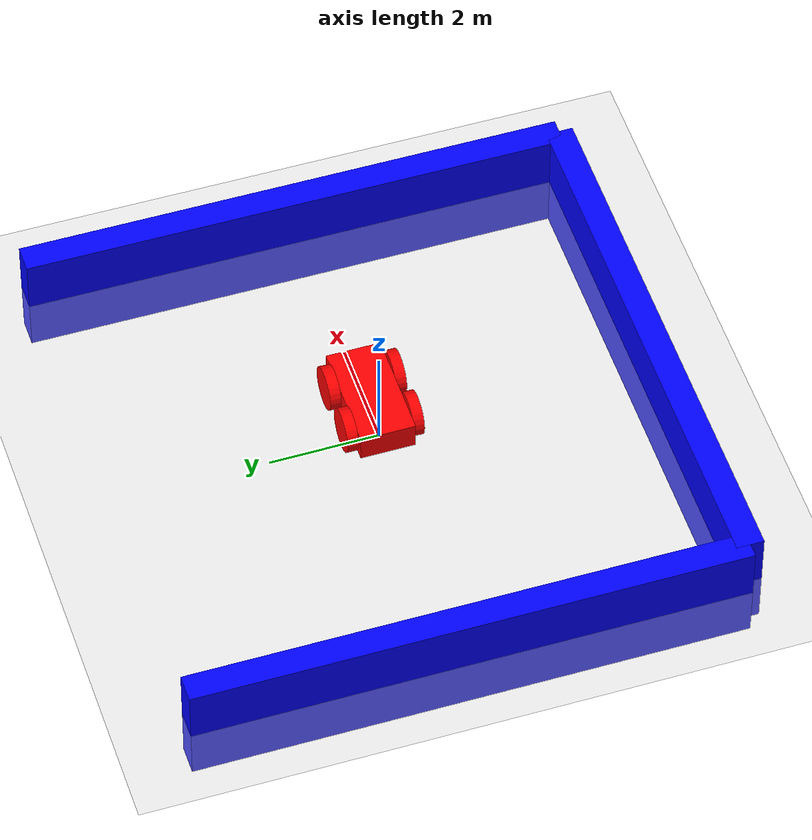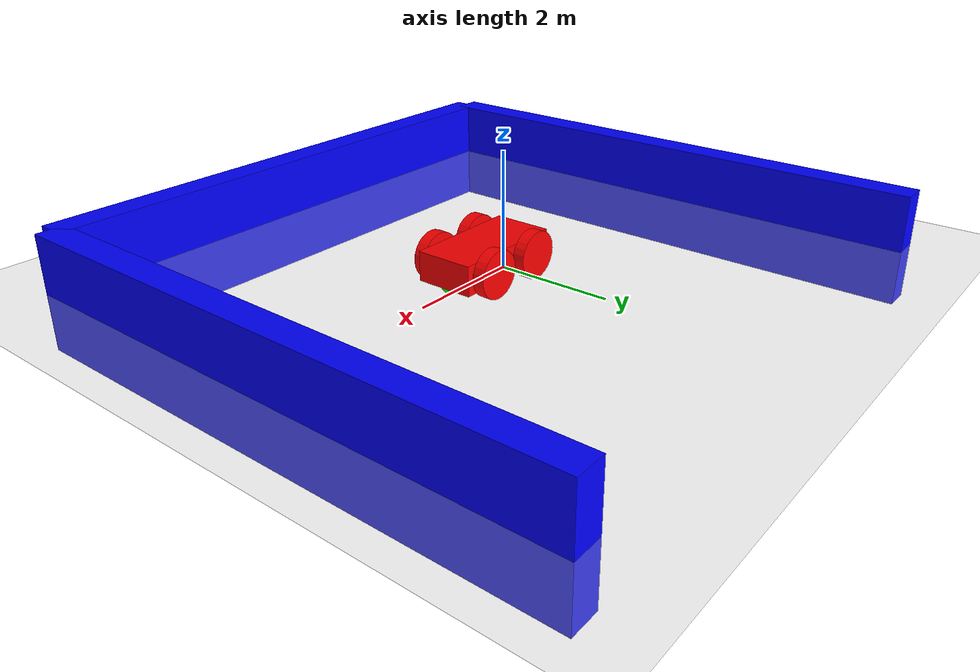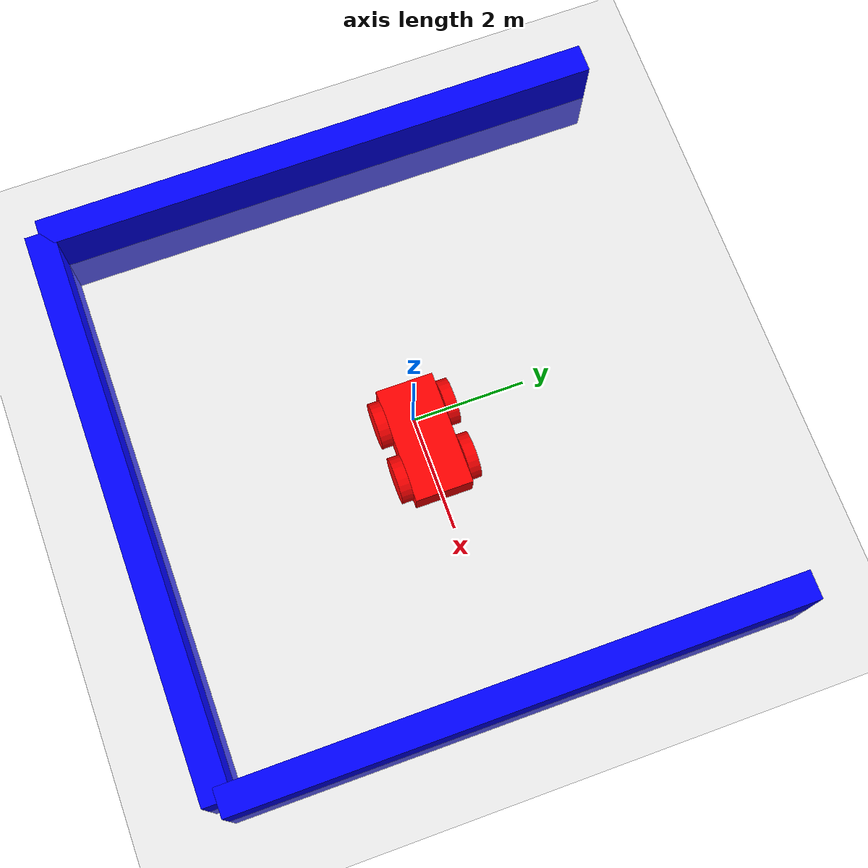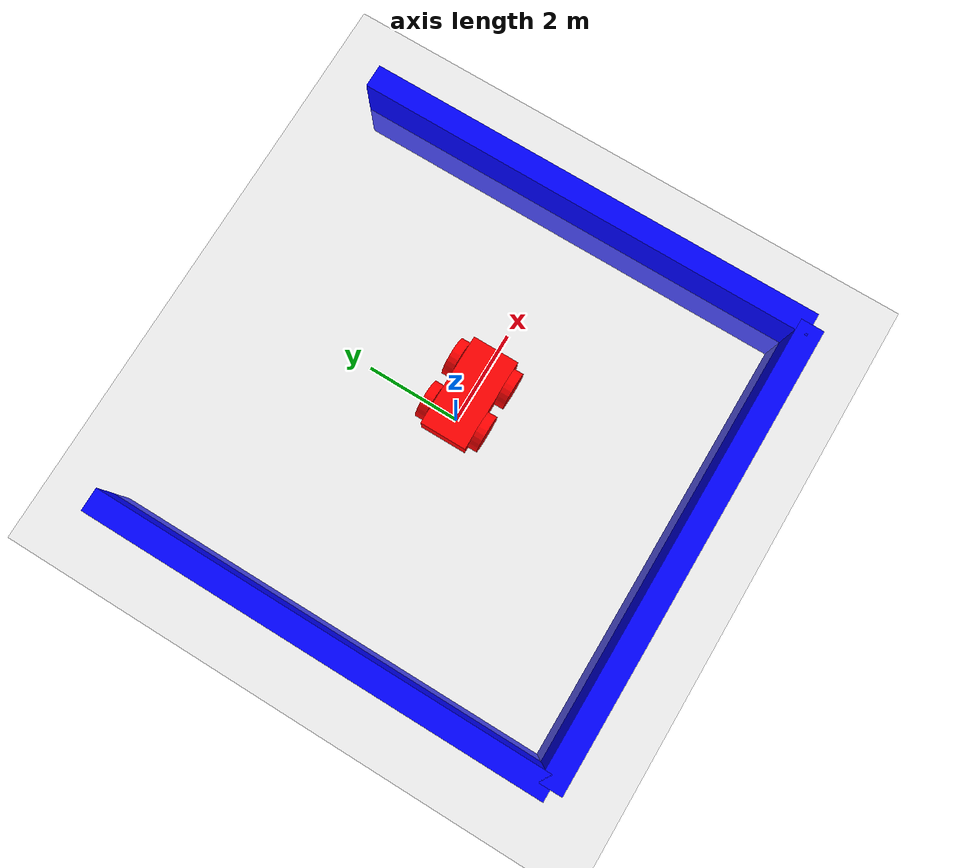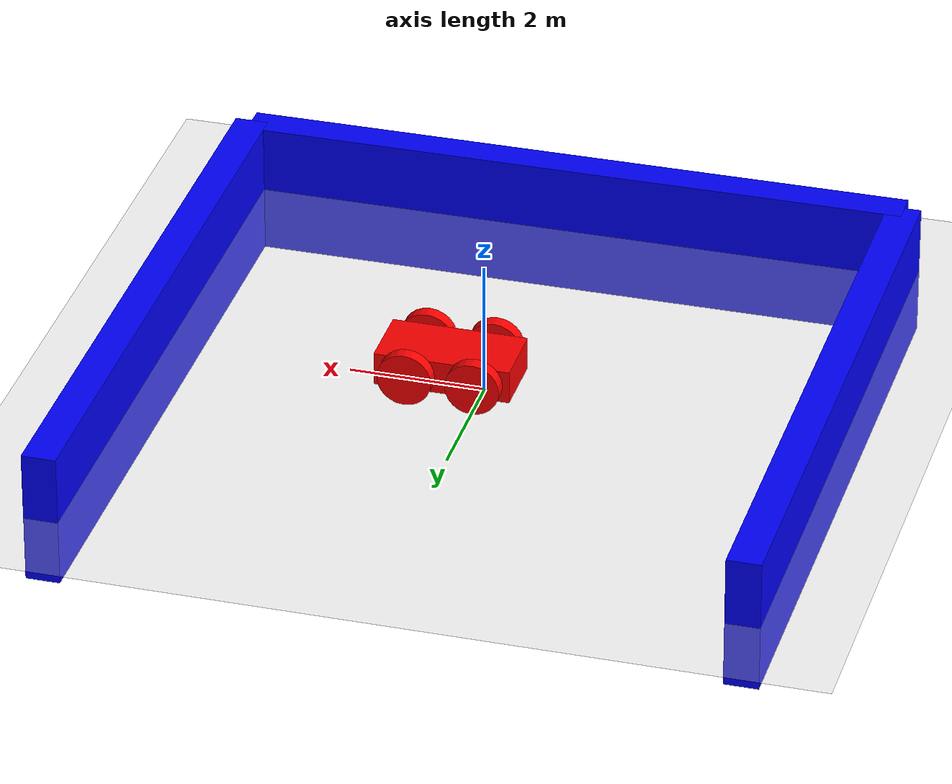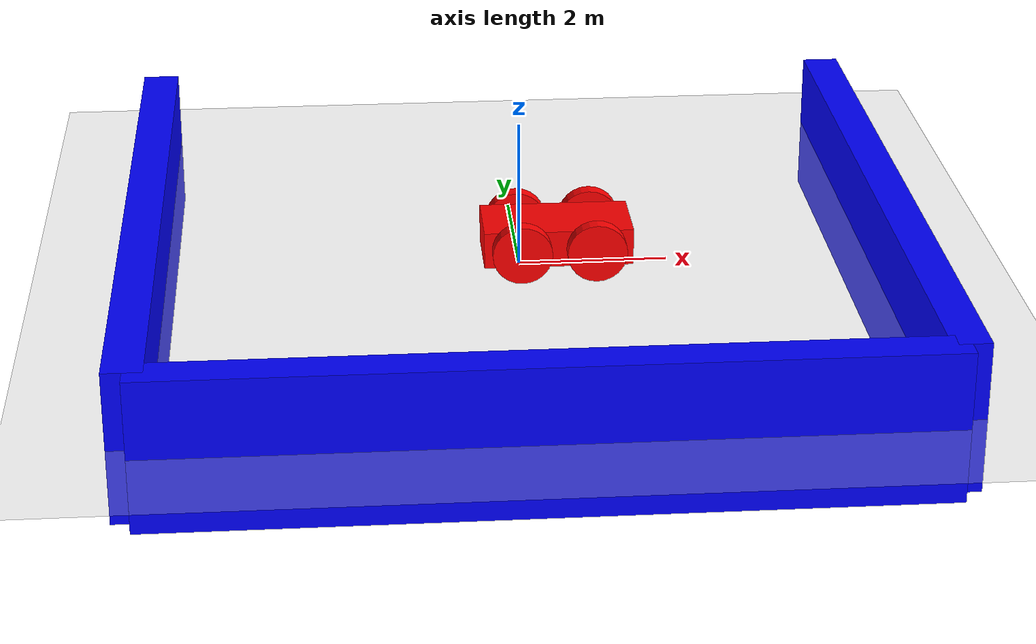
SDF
<?xml version="1.0" ?>
<sdf version="1.8">
    <world name="car_world">
        <physics name="1ms" type="ignored">
            <max_step_size>0.001</max_step_size>
            <real_time_factor>1.0</real_time_factor>
        </physics>
        <plugin
            filename="libignition-gazebo-physics-system.so"
            name="ignition::gazebo::systems::Physics">
        </plugin>
        <plugin filename="libignition-gazebo-imu-system.so"
        name="ignition::gazebo::systems::Imu">
</plugin>
        <plugin
            filename="libignition-gazebo-user-commands-system.so"
            name="ignition::gazebo::systems::UserCommands">
        </plugin>
        <plugin filename="libignition-gazebo-contact-system.so"
        name="ignition::gazebo::systems::Contact">
</plugin>
<plugin
      filename="libignition-gazebo-sensors-system.so"
      name="ignition::gazebo::systems::Sensors">
      <render_engine>ogre2</render_engine>
    </plugin>

        <plugin
            filename="libignition-gazebo-scene-broadcaster-system.so"
            name="ignition::gazebo::systems::SceneBroadcaster">
        </plugin>

        <light type="directional" name="sun">
            <cast_shadows>true</cast_shadows>
            <pose>0 0 10 0 0 0</pose>
            <diffuse>0.8 0.8 0.8 1</diffuse>
            <specular>0.2 0.2 0.2 1</specular>
            <attenuation>
                <range>1000</range>
                <constant>0.9</constant>
                <linear>0.01</linear>
                <quadratic>0.001</quadratic>
            </attenuation>
            <direction>-0.5 0.1 -0.9</direction>
        </light>

        <model name="ground_plane">
            <static>true</static>
            <link name="link">
                <collision name="collision">
                <geometry>
                    <plane>
                    <normal>0 0 1</normal>
                    </plane>
                </geometry>
                </collision>
                <visual name="visual">
                <geometry>
                    <plane>
                    <normal>0 0 1</normal>
                    <size>100 100</size>
                    </plane>
                </geometry>
                <material>
                    <ambient>0.8 0.8 0.8 1</ambient>
                    <diffuse>0.8 0.8 0.8 1</diffuse>
                    <specular>0.8 0.8 0.8 1</specular>
                </material>
                </visual>
            </link>
        </model>
 <model name='c_wall_left'>
            <static>true</static>
            <pose>-5 0 0 0 0 0</pose>
            <link name='box'>
                <visual name='visual'>
                    <geometry>
                        <box>
                            <size>0.5 10.0 2.0</size>
                        </box>
                    </geometry>
                    <material>
                        <ambient>0.0 0.0 1.0 1</ambient>
                        <diffuse>0.0 0.0 1.0 1</diffuse>
                        <specular>0.0 0.0 1.0 1</specular>
                    </material>
                </visual>
                <collision name='collision'>
                    <geometry>
                        <box>
                            <size>0.5 10.0 2.0</size>
                        </box>
                    </geometry>
                </collision>
            </link>
        </model>

        <model name='c_wall_right'>
            <static>true</static>
            <pose>5 0 0 0 0 0</pose>
            <link name='box'>
                <visual name='visual'>
                    <geometry>
                        <box>
                            <size>0.5 10.0 2.0</size>
                        </box>
                    </geometry>
                    <material>
                        <ambient>0.0 0.0 1.0 1</ambient>
                        <diffuse>0.0 0.0 1.0 1</diffuse>
                        <specular>0.0 0.0 1.0 1</specular>
                    </material>
                </visual>
                <collision name='collision'>
                    <geometry>
                        <box>
                            <size>0.5 10.0 2.0</size>
                        </box>
                    </geometry>
                </collision>
            </link>
        </model>

        <model name='c_wall_back'>
            <static>true</static>
            <pose>0 -5 0 0 0 0</pose>
            <link name='box'>
                <visual name='visual'>
                    <geometry>
                        <box>
                            <size>10.0 0.5 2.0</size>
                        </box>
                    </geometry>
                    <material>
                        <ambient>0.0 0.0 1.0 1</ambient>
                        <diffuse>0.0 0.0 1.0 1</diffuse>
                        <specular>0.0 0.0 1.0 1</specular>
                    </material>
                </visual>
                <collision name='collision'>
                    <geometry>
                        <box>
                            <size>10.0 0.5 2.0</size>
                        </box>
                    </geometry>
                </collision>
            </link>
        </model>
        <model name='vehicle_blue' canonical_link='chassis'>
           <pose relative_to='world'>0 0 0 0 0 0</pose>
           <frame name="lidar_frame" attached_to='chassis'>
    <pose>0.8 0 0.5 0 0 0</pose>
</frame>

           <link name='chassis'>
               <pose relative_to='__model__'>0.5 0 0.4 0 0 0</pose>

               <inertial> <!--inertial properties of the link mass, inertia matix-->
                   <mass>1.14395</mass>
                   <inertia>
                       <ixx>0.095329</ixx>
                       <ixy>0</ixy>
                       <ixz>0</ixz>
                       <iyy>0.381317</iyy>
                       <iyz>0</iyz>
                       <izz>0.476646</izz>
                  </inertia>
              </inertial>
                  <visual name='visual'>
                     <geometry>
                         <box>
                             <size>2.0 1.0 0.5</size>
                         </box>
                     </geometry>
        <!--let's add color to our link-->
                     <material>
                         <ambient>1.0 0.0 0.0 1</ambient>
                         <diffuse>1.0 0.0 0.0 1</diffuse>
                         <specular>1.0 0.0 0.0 1</specular>
                     </material>
                 </visual>
                 <collision name='collision'>
                     <geometry>
                          <box>
                              <size>2.0 1.0 0.5</size>
                          </box>
                      </geometry>
                  </collision>
                  <sensor name="imu_sensor" type="imu">
    <always_on>1</always_on>
    <update_rate>1</update_rate>
    <visualize>true</visualize>
    <topic>imu</topic>
</sensor>
<sensor name='gpu_lidar' type='gpu_lidar'>"
    <pose relative_to='lidar_frame'>0 0 0 0 0 0</pose>
    <topic>lidar</topic>
    <update_rate>10</update_rate>
    <ray>
        <scan>
            <horizontal>
                <samples>640</samples>
                <resolution>1</resolution>
                <min_angle>-1.396263</min_angle>
                <max_angle>1.396263</max_angle>
            </horizontal>
            <vertical>
                <samples>1</samples>
                <resolution>0.01</resolution>
                <min_angle>0</min_angle>
                <max_angle>0</max_angle>
            </vertical>
        </scan>
        <range>
            <min>0.08</min>
            <max>10.0</max>
            <resolution>0.01</resolution>
        </range>
    </ray>
    <always_on>1</always_on>
    <visualize>true</visualize>
</sensor>
              </link>
              <link name='left_front_wheel'>
                  <pose relative_to="chassis">0.5 0.6 0 -1.5707 0 0</pose>
                  <inertial>
                      <mass>1</mass>
                      <inertia>
                          <ixx>0.043333</ixx>
                          <ixy>0</ixy>
                          <ixz>0</ixz>
                          <iyy>0.043333</iyy>
                          <iyz>0</iyz>
                          <izz>0.08</izz>
                      </inertia>
                  </inertial>
                      <visual name='visual'>
        <geometry>
            <cylinder>
                <radius>0.4</radius>
                <length>0.2</length>
            </cylinder>
        </geometry>
        <material>
            <ambient>1.0 0.0 0.0 1</ambient>
            <diffuse>1.0 0.0 0.0 1</diffuse>
            <specular>1.0 0.0 0.0 1</specular>
        </material>
    </visual>
    <collision name='collision'>
        <geometry>
            <cylinder>
                <radius>0.4</radius>
                <length>0.2</length>
            </cylinder>
        </geometry>
    </collision>
</link>
<link name='right_front_wheel'>
    <pose relative_to="chassis">0.5 -0.6 0 -1.5707 0 0</pose> <!--angles are in radian-->
    <inertial>
        <mass>1</mass>
        <inertia>
            <ixx>0.043333</ixx>
            <ixy>0</ixy>
            <ixz>0</ixz>
            <iyy>0.043333</iyy>
            <iyz>0</iyz>
            <izz>0.08</izz>
        </inertia>
    </inertial>
    <visual name='visual'>
        <geometry>
            <cylinder>
                <radius>0.4</radius>
                <length>0.2</length>
            </cylinder>
        </geometry>
        <material>
            <ambient>1.0 0.0 0.0 1</ambient>
            <diffuse>1.0 0.0 0.0 1</diffuse>
            <specular>1.0 0.0 0.0 1</specular>
        </material>
    </visual>
    <collision name='collision'>
        <geometry>
            <cylinder>
                <radius>0.4</radius>
                <length>0.2</length>
            </cylinder>
        </geometry>
    </collision>
</link>
<link name='left_rear_wheel'>
    <pose relative_to="chassis">-0.5 0.6 0 -1.5707 0 0</pose>
    <inertial>
        <mass>1</mass>
        <inertia>
            <ixx>0.043333</ixx>
            <ixy>0</ixy>
            <ixz>0</ixz>
            <iyy>0.043333</iyy>
            <iyz>0</iyz>
            <izz>0.08</izz>
        </inertia>
    </inertial>
    <visual name='visual'>
        <geometry>
            <cylinder>
                <radius>0.4</radius>
                <length>0.2</length>
            </cylinder>
        </geometry>
        <material>
            <ambient>1.0 0.0 0.0 1</ambient>
            <diffuse>1.0 0.0 0.0 1</diffuse>
            <specular>1.0 0.0 0.0 1</specular>
        </material>
    </visual>
    <collision name='collision'>
        <geometry>
            <cylinder>
                <radius>0.4</radius>
                <length>0.2</length>
            </cylinder>
        </geometry>
    </collision>
</link>
<link name='right_rear_wheel'>
    <pose relative_to="chassis">-0.5 -0.6 0 -1.5707 0 0</pose> <!--angles are in radian-->
    <inertial>
        <mass>1</mass>
        <inertia>
            <ixx>0.043333</ixx>
            <ixy>0</ixy>
            <ixz>0</ixz>
            <iyy>0.043333</iyy>
            <iyz>0</iyz>
            <izz>0.08</izz>
        </inertia>
    </inertial>
    <visual name='visual'>
        <geometry>
            <cylinder>
                <radius>0.4</radius>
                <length>0.2</length>
            </cylinder>
        </geometry>
        <material>
            <ambient>1.0 0.0 0.0 1</ambient>
            <diffuse>1.0 0.0 0.0 1</diffuse>
            <specular>1.0 0.0 0.0 1</specular>
        </material>
    </visual>
    <collision name='collision'>
        <geometry>
            <cylinder>
                <radius>0.4</radius>
                <length>0.2</length>
            </cylinder>
        </geometry>
    </collision>
</link>
<frame name="caster_frame" attached_to='chassis'>
    <pose>0.8 0 -0.2 0 0 0</pose>
</frame>
<!--caster wheel-->
<link name='caster'>
    <pose relative_to='caster_frame'/>
    <inertial>
        <mass>1</mass>
        <inertia>
            <ixx>0.016</ixx>
            <ixy>0</ixy>
            <ixz>0</ixz>
            <iyy>0.016</iyy>
            <iyz>0</iyz>
            <izz>0.016</izz>
        </inertia>
    </inertial>
    <visual name='visual'>
        <geometry>
            <sphere>
                <radius>0.2</radius>
            </sphere>
        </geometry>
        <material>
            <ambient>0.0 1 0.0 1</ambient>
            <diffuse>0.0 1 0.0 1</diffuse>
            <specular>0.0 1 0.0 1</specular>
        </material>
    </visual>
    <collision name='collision'>
        <geometry>
            <sphere>
                <radius>0.2</radius>
            </sphere>
        </geometry>
    </collision>
</link>
<joint name='left_front_wheel_joint' type='revolute'>
    <pose relative_to='left_front_wheel'/>
        <parent>chassis</parent>
    <child>left_front_wheel</child>
        <axis>
        <xyz expressed_in='__model__'>0 1 0</xyz> <!--can be defined as any frame or even arbitrary frames-->
        <limit>
            <lower>-1.79769e+308</lower>    <!--negative infinity-->
            <upper>1.79769e+308</upper>     <!--positive infinity-->
        </limit>
    </axis>
</joint>
<joint name='right_front_wheel_joint' type='revolute'>
    <pose relative_to='right_front_wheel'/>
    <parent>chassis</parent>
    <child>right_front_wheel</child>
    <axis>
        <xyz expressed_in='__model__'>0 1 0</xyz>
        <limit>
            <lower>-1.79769e+308</lower>    <!--negative infinity-->
            <upper>1.79769e+308</upper>     <!--positive infinity-->
        </limit>
    </axis>
</joint>
<joint name='left_rear_wheel_joint' type='revolute'>
    <pose relative_to='left_rear_wheel'/>
        <parent>chassis</parent>
    <child>left_rear_wheel</child>
        <axis>
        <xyz expressed_in='__model__'>0 1 0</xyz> <!--can be defined as any frame or even arbitrary frames-->
        <limit>
            <lower>-1.79769e+308</lower>    <!--negative infinity-->
            <upper>1.79769e+308</upper>     <!--positive infinity-->
        </limit>
    </axis>
</joint>
<joint name='right_rear_wheel_joint' type='revolute'>
    <pose relative_to='right_rear_wheel'/>
    <parent>chassis</parent>
    <child>right_rear_wheel</child>
    <axis>
        <xyz expressed_in='__model__'>0 1 0</xyz>
        <limit>
            <lower>-1.79769e+308</lower>    <!--negative infinity-->
            <upper>1.79769e+308</upper>     <!--positive infinity-->
        </limit>
    </axis>
</joint>
<joint name='caster_wheel' type='ball'>
    <parent>chassis</parent>
    <child>caster</child>
</joint>
<plugin
    filename="libignition-gazebo-diff-drive-system.so"
    name="ignition::gazebo::systems::DiffDrive">
    <left_joint>left_front_wheel_joint</left_joint>
    <right_joint>right_front_wheel_joint</right_joint>
    <wheel_separation>1.2</wheel_separation>
    <wheel_radius>0.4</wheel_radius>
    <odom_publish_frequency>1</odom_publish_frequency>
    <topic>cmd_vel</topic>
</plugin>

<plugin filename="libignition-gazebo-triggered-publisher-system.so"
        name="ignition::gazebo::systems::TriggeredPublisher">
    <input type="ignition.msgs.Int32" topic="/keyboard/keypress">
        <match field="data">16777235</match>
    </input>
    <output type="ignition.msgs.Twist" topic="/cmd_vel">
        linear: {x: 0.5}, angular: {z: 0.0}
    </output>
</plugin>
<plugin filename="libignition-gazebo-triggered-publisher-system.so"
        name="ignition::gazebo::systems::TriggeredPublisher">
    <input type="ignition.msgs.Int32" topic="/keyboard/keypress">
        <match field="data">16777237</match>
    </input>
    <output type="ignition.msgs.Twist" topic="/cmd_vel">
        linear: {x: -0.5}, angular: {z: 0.0}
    </output>
</plugin>
<plugin filename="libignition-gazebo-triggered-publisher-system.so"
        name="ignition::gazebo::systems::TriggeredPublisher">
    <input type="ignition.msgs.Boolean" topic="/wall/touched">
        <match>data: true</match>
    </input>
    <output type="ignition.msgs.Twist" topic="/cmd_vel">
        linear: {x: 0.0}, angular: {z: 0.0}
    </output>
</plugin>
          </model>

    </world>
</sdf>
